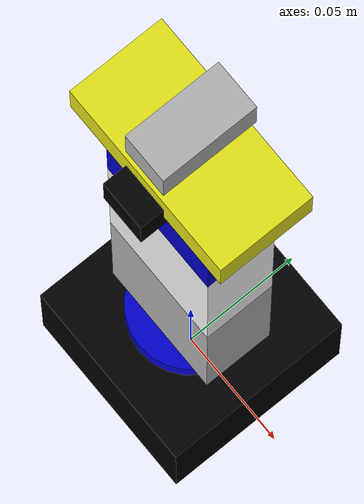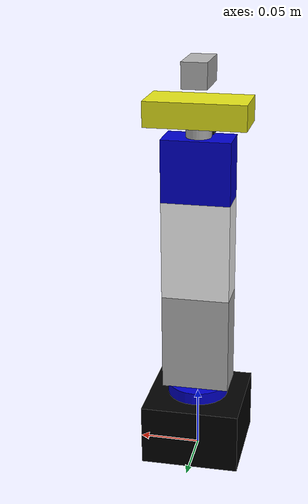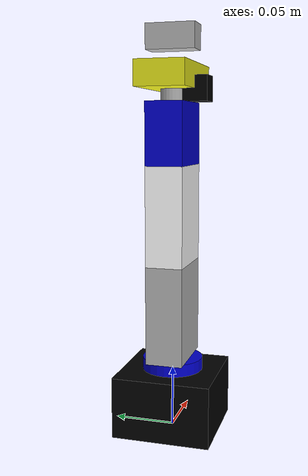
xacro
<?xml version="1.0"?>
<robot xmlns:xacro="http://www.ros.org/wiki/xacro" name="my_arm_with_gripper">
    <xacro:arg name="initial_positions_file" default="initial_positions.yaml" />
    <xacro:arg name="hardware_params_file" default="$(find my_arm_config)/config/hardware_params.yaml" />

    <!-- Import my_arm_with_gripper urdf file -->
    <xacro:include filename="$(find my_arm_description)/urdf/my_arm_with_gripper.urdf" />

    <!-- Import control_xacro -->
    <xacro:include filename="my_arm_with_gripper.ros2_control.xacro" />

    <xacro:my_arm_with_gripper_ros2_control
        name="FakeSystem"
        initial_positions_file="$(arg initial_positions_file)"
        hardware_params_file="$(arg hardware_params_file)"/>

</robot>

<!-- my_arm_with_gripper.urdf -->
<robot name="my_arm_with_gripper">

  <material name="blue">
    <color rgba="0.0 0.0 0.8 1.0"/>
  </material>
  <material name="grey">
    <color rgba="0.7 0.7 0.7 1.0"/>
  </material>
  <material name="black">
    <color rgba="0.0 0.0 0.0 1.0"/>
  </material>
  <material name="white">
    <color rgba="1.0 1.0 1.0 1.0"/>
  </material>
  <material name="gripper_material">
    <color rgba="0.9 0.9 0.1 1.0"/>
  </material>

  <link name="base_link">
    <visual>
      <geometry>
        <!-- 8cm x 8cm x 5cm -->
        <box size="0.08 0.08 0.05"/>
      </geometry>
      <origin xyz="0 0 0.025" rpy="0 0 0"/>
      <material name="black"/>
    </visual>
    <collision>
      <geometry>
        <box size="0.08 0.08 0.05"/>
      </geometry>
      <origin xyz="0 0 0.025" rpy="0 0 0"/>
    </collision>
  </link>

  <joint name="shoulder_pan_joint" type="revolute">
    <parent link="base_link"/>
    <child link="shoulder_link"/>
    <origin xyz="0 0 0.05" rpy="0 0 0"/>
    <axis xyz="0 0 1"/>
    <limit lower="-0.05" upper="3.05" effort="100" velocity="1.0"/>
  </joint>

  <link name="shoulder_link">
    <visual>
      <geometry>
        <!-- diameter 5cm, height 1cm -->
        <cylinder length="0.01" radius="0.025"/>
      </geometry>
      <origin xyz="0 0 0.005" rpy="0 0 0"/>
      <material name="blue"/>
    </visual>
    <collision>
      <geometry>
        <cylinder length="0.01" radius="0.025"/>
      </geometry>
      <origin xyz="0 0 0.005" rpy="0 0 0"/>
    </collision>
  </link>

  <joint name="shoulder_lift_joint" type="revolute">
    <parent link="shoulder_link"/>
    <child link="upper_arm_link"/>
    <!-- place joint at the top of shoulder_link so links are not floating -->
    <origin xyz="0 0 0.01" rpy="0 0 0"/>
    <!-- pitch (up/down) -->
    <axis xyz="1 0 0"/>
    <limit lower="-1.75" upper="1.05" effort="100" velocity="1.0"/>
  </joint>

  <link name="upper_arm_link">
    <visual>
      <geometry>
        <!-- length 8cm, width 5.5cm, height 3cm -->
        <!-- stand up: extend along +Z -->
        <box size="0.055 0.03 0.08"/>
      </geometry>
      <!-- start at joint and extend along +Z by half length -->
      <origin xyz="0 0 0.04" rpy="0 0 0"/>
      <material name="grey"/>
    </visual>
    <collision>
      <geometry>
        <box size="0.055 0.03 0.08"/>
      </geometry>
      <origin xyz="0 0 0.04" rpy="0 0 0"/>
    </collision>
  </link>

  <joint name="elbow_joint" type="revolute">
    <parent link="upper_arm_link"/>
    <child link="forearm_link"/>
    <!-- match upper_arm_link length (8cm) -->
    <origin xyz="0 0 0.08" rpy="0 0 0"/>
    <!-- pitch (up/down) -->
    <axis xyz="1 0 0"/>
    <limit lower="-1.10" upper="1.05" effort="100" velocity="1.0"/>
  </joint>

  <link name="forearm_link">
    <visual>
      <geometry>
        <!-- length 8cm, width 5.5cm, height 3cm -->
        <box size="0.055 0.03 0.08"/>
      </geometry>
      <origin xyz="0 0 0.04" rpy="0 0 0"/>
      <material name="white"/>
    </visual>
    <collision>
      <geometry>
        <box size="0.055 0.03 0.08"/>
      </geometry>
      <origin xyz="0 0 0.04" rpy="0 0 0"/>
    </collision>
  </link>

  <joint name="wrist_1_joint" type="revolute">
    <parent link="forearm_link"/>
    <child link="wrist_1_link"/>
    <!-- match forearm_link length (8cm) -->
    <origin xyz="0 0 0.08" rpy="0 0 0"/>
    <!-- pitch (up/down) -->
    <axis xyz="1 0 0"/>
    <limit lower="-1.10" upper="1.60" effort="50" velocity="1.0"/>
  </joint>

  <link name="wrist_1_link">
    <visual>
      <geometry>
        <!-- length 5cm, width 5.5cm, height 3cm -->
        <box size="0.055 0.03 0.05"/>
      </geometry>
      <!-- match length 5cm -->
      <origin xyz="0 0 0.025" rpy="0 0 0"/>
      <material name="blue"/>
    </visual>
    <collision>
      <geometry>
        <box size="0.055 0.03 0.05"/>
      </geometry>
      <origin xyz="0 0 0.025" rpy="0 0 0"/>
    </collision>
  </link>

  <joint name="wrist_2_joint" type="revolute">
    <parent link="wrist_1_link"/>
    <child link="wrist_2_link"/>
    <!-- match wrist_1_link length (5cm), keep chain vertical along +Z -->
    <origin xyz="0 0 0.05" rpy="0 0 0"/>
    <!-- yaw (horizontal rotation) -->
    <axis xyz="0 0 1"/>
    <limit lower="-1.05" upper="2.05" effort="50" velocity="1.0"/>
  </joint>

  <link name="wrist_2_link">
    <visual>
      <geometry>
        <!-- diameter 2cm, height 1cm -->
        <cylinder length="0.01" radius="0.01"/>
      </geometry>
      <origin xyz="0 0 0.005" rpy="0 0 0"/>
      <material name="grey"/>
    </visual>
    <collision>
      <geometry>
        <cylinder length="0.01" radius="0.01"/>
      </geometry>
      <origin xyz="0 0 0.005" rpy="0 0 0"/>
    </collision>
  </link>

  <joint name="wrist_2_to_gripper_base_joint" type="fixed">
    <parent link="wrist_2_link"/>
    <!-- match wrist_2_link height (1cm) -->
    <origin xyz="0 0 0.01" rpy="0 0 0"/>
    <child link="gripper_base_link"/>
  </joint>

  <link name="gripper_base_link">
    <visual>
      <geometry>
        <!-- scaled down -->
        <box size="0.08 0.04 0.02"/>
      </geometry>
      <!-- place box above the joint frame so it doesn't hide wrist_2_link cylinder -->
      <origin xyz="0 0 0.01" rpy="0 0 0"/>
      <material name="gripper_material"/>
    </visual>
    <collision>
      <geometry>
        <box size="0.08 0.04 0.02"/>
      </geometry>
      <origin xyz="0 0 0.01" rpy="0 0 0"/>
    </collision>
  </link>

  <joint name="gripper_base_to_grasp_point" type="fixed">
    <parent link="gripper_base_link"/>
    <child link="grasp_point_link"/>
    <origin xyz="0 0 0.04" rpy="0 0 0"/>
  </joint>

  <link name="grasp_point_link">
    <inertial>
      <origin xyz="0 0 0" rpy="0 0 0"/>
      <mass value="0.001"/>
      <inertia ixx="0.0001" ixy="0" ixz="0" iyy="0.0001" iyz="0" izz="0.0001"/>
    </inertial>
  </link>

  <link name="camera_link">
    <visual>
      <geometry>
        <box size="0.02 0.02 0.02"/>
      </geometry>
      <origin xyz="0 0 0" rpy="0 0 0"/>
      <material name="black"/>
    </visual>
  </link>

  <joint name="gripper_base_to_camera" type="fixed">
    <parent link="gripper_base_link"/>
    <origin xyz="0 -0.02 0" rpy="0 0 0"/>
    <child link="camera_link"/>
  </joint>

  <joint name="finger_joint" type="revolute">
    <parent link="gripper_base_link"/>
    <child link="finger_link"/>
    <origin xyz="0 0 0.02" rpy="0 0 0"/>
    <axis xyz="0 0 1"/>
    <limit lower="-0.05" upper="1.65" effort="15" velocity="1.0"/>
  </joint>

  <link name="finger_link">
    <visual>
      <geometry>
        <box size="0.02 0.04 0.02"/>
      </geometry>
      <origin xyz="0 0 0.02" rpy="0 0 0"/>
      <material name="grey"/>
    </visual>
    <collision>
      <geometry>
        <box size="0.02 0.04 0.02"/>
      </geometry>
      <origin xyz="0 0 0.02" rpy="0 0 0"/>
    </collision>
  </link>

  </robot>
